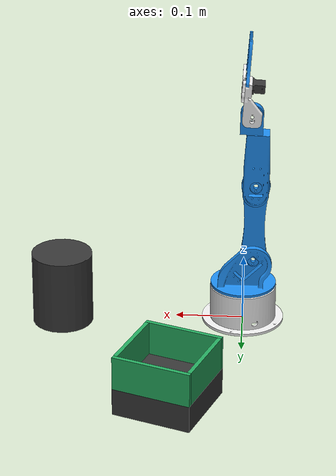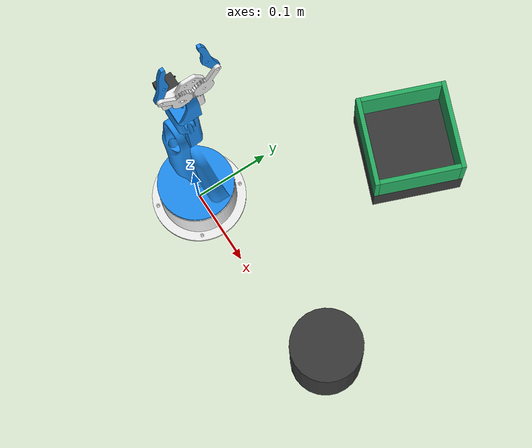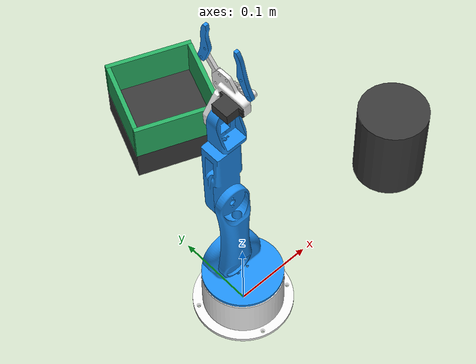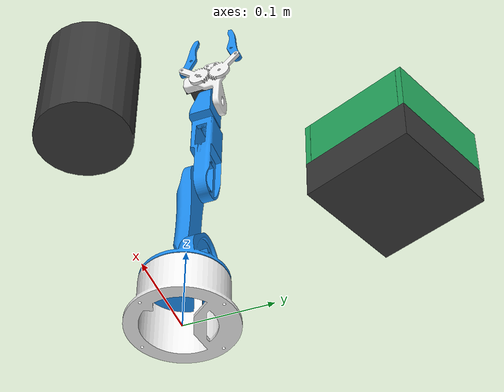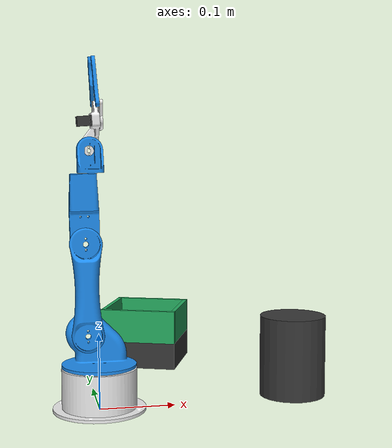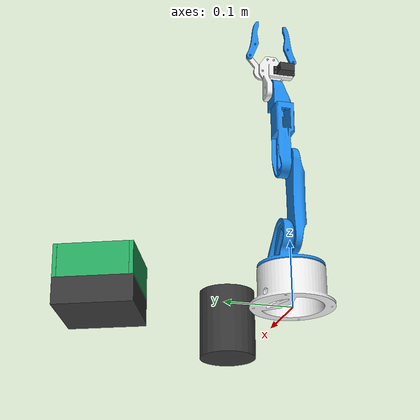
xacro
<?xml version="1.0"?>
<robot xmlns:xacro="http://www.ros.org/wiki/xacro" name="five_dof_arm">

  <xacro:arg name="use_sim" default="true"/>
  <xacro:property name="scale_mm" value="0.001 0.001 0.001"/>

  <material name="blue_pla">
    <color rgba="0.12 0.56 0.95 1.0"/>
  </material>
  <material name="white_pla">
    <color rgba="0.95 0.95 0.95 1.0"/>
  </material>
  <material name="bin_green">
    <color rgba="0.15 0.68 0.38 1.0"/>
  </material>
  <material name="dark_grey">
    <color rgba="0.22 0.22 0.22 1.0"/>
  </material>

  <xacro:macro name="clean_link" params="name stl color:='blue_pla' mass:=0.2">
    <link name="${name}">
      <visual>
        <origin xyz="0 0 0" rpy="0 0 0"/>
        <geometry><mesh filename="package://arm_description/meshes/${stl}" scale="${scale_mm}"/></geometry>
        <material name="${color}"/>
      </visual>
      <collision>
        <origin xyz="0 0 0" rpy="0 0 0"/>
        <geometry><mesh filename="package://arm_description/meshes/${stl}" scale="${scale_mm}"/></geometry>
      </collision>
      <inertial>
        <mass value="${mass}"/>
        <origin xyz="0 0 0" rpy="0 0 0"/>
        <inertia ixx="0.001" ixy="0.0" ixz="0.0" iyy="0.001" iyz="0.0" izz="0.001"/>
      </inertial>
    </link>
  </xacro:macro>

  <link name="world"/>
  <joint name="world_fixed" type="fixed">
    <parent link="world"/>
    <child link="base_link"/>
    <origin xyz="0 0 0" rpy="0 0 0"/>
  </joint>

  <xacro:clean_link name="base_link"   stl="base_clean.stl"   color="white_pla" mass="1.0"/>
  <xacro:clean_link name="waist_link"  stl="waist_clean.stl"  color="blue_pla" mass="0.4"/>
  <xacro:clean_link name="arm_01_link" stl="arm_01_clean.stl" color="blue_pla" mass="0.3"/>
  <xacro:clean_link name="arm_02_link" stl="arm_02_clean.stl" color="blue_pla" mass="0.25"/>
  <xacro:clean_link name="arm_03_link" stl="arm_03_clean.stl" color="blue_pla" mass="0.15"/>

  <link name="gripper_base_link">
    <visual>
      <origin xyz="0 0 0" rpy="0 0 0"/>
      <geometry><mesh filename="package://arm_description/meshes/gripper_base_clean.stl" scale="${scale_mm}"/></geometry>
      <material name="white_pla"/>
    </visual>
    <visual>
      <origin xyz="0 0 0" rpy="0 0 0"/>
      <geometry><mesh filename="package://arm_description/meshes/servo_clean.stl" scale="${scale_mm}"/></geometry>
      <material name="dark_grey"/>
    </visual>
    <collision>
      <origin xyz="0 0 0" rpy="0 0 0"/>
      <geometry><mesh filename="package://arm_description/meshes/gripper_base_clean.stl" scale="${scale_mm}"/></geometry>
    </collision>
    <inertial>
      <mass value="0.15"/>
      <origin xyz="0 0 0" rpy="0 0 0"/>
      <inertia ixx="0.0005" ixy="0.0" ixz="0.0" iyy="0.0005" iyz="0.0" izz="0.0005"/>
    </inertial>
  </link>

  <link name="left_finger_link">
    <visual>
      <origin xyz="0 0 0" rpy="0 0 0"/>
      <geometry><mesh filename="package://arm_description/meshes/gear_left_clean.stl" scale="${scale_mm}"/></geometry>
      <material name="white_pla"/>
    </visual>
    <visual>
      <origin xyz="0 0 0" rpy="0 0 0"/>
      <geometry><mesh filename="package://arm_description/meshes/finger_left_clean.stl" scale="${scale_mm}"/></geometry>
      <material name="blue_pla"/>
    </visual>
    <collision>
      <origin xyz="0 0 0" rpy="0 0 0"/>
      <geometry><mesh filename="package://arm_description/meshes/finger_left_clean.stl" scale="${scale_mm}"/></geometry>
    </collision>
    <inertial>
      <mass value="0.05"/>
      <origin xyz="0 0 0" rpy="0 0 0"/>
      <inertia ixx="0.002" ixy="0.0" ixz="0.0" iyy="0.002" iyz="0.0" izz="0.002"/>
    </inertial>
  </link>

  <link name="right_finger_link">
    <visual>
      <origin xyz="0 0 0" rpy="0 0 0"/>
      <geometry><mesh filename="package://arm_description/meshes/gear_right_clean.stl" scale="${scale_mm}"/></geometry>
      <material name="white_pla"/>
    </visual>
    <visual>
      <origin xyz="0 0 0" rpy="0 0 0"/>
      <geometry><mesh filename="package://arm_description/meshes/finger_right_clean.stl" scale="${scale_mm}"/></geometry>
      <material name="blue_pla"/>
    </visual>
    <collision>
      <origin xyz="0 0 0" rpy="0 0 0"/>
      <geometry><mesh filename="package://arm_description/meshes/finger_right_clean.stl" scale="${scale_mm}"/></geometry>
    </collision>
    <inertial>
      <mass value="0.05"/>
      <origin xyz="0 0 0" rpy="0 0 0"/>
      <inertia ixx="0.002" ixy="0.0" ixz="0.0" iyy="0.002" iyz="0.0" izz="0.002"/>
    </inertial>
  </link>

  <joint name="joint_1" type="revolute">
    <parent link="base_link"/>
    <child link="waist_link"/>
    <origin xyz="0.00000 0.00000 0.05750" rpy="0 0 0"/>
    <axis xyz="0 0 1"/>
    <dynamics damping="0.8" friction="0.2"/>
    <limit lower="-3.1415" upper="3.1415" effort="15.0" velocity="2.0"/>
  </joint>

  <joint name="joint_2" type="revolute">
    <parent link="waist_link"/>
    <child link="arm_01_link"/>
    <origin xyz="-0.02220 0.00428 0.03866" rpy="0 0 0"/>
    <axis xyz="0 1 0"/>
    <dynamics damping="0.8" friction="0.2"/>
    <limit lower="-1.5708" upper="1.5708" effort="15.0" velocity="2.0"/>
  </joint>

  <joint name="joint_3" type="revolute">
    <parent link="arm_01_link"/>
    <child link="arm_02_link"/>
    <origin xyz="0.00681 0.00000 0.11423" rpy="0 0 0"/>
    <axis xyz="0 1 0"/>
    <dynamics damping="0.8" friction="0.2"/>
    <limit lower="-2.0" upper="2.0" effort="12.0" velocity="2.0"/>
  </joint>

  <joint name="joint_4" type="revolute">
    <parent link="arm_02_link"/>
    <child link="arm_03_link"/>
    <origin xyz="0.00313 0.00659 0.09735" rpy="0 0 0"/>
    <axis xyz="0.0321 0.0000 0.9995"/>
    <dynamics damping="0.8" friction="0.2"/>
    <limit lower="-3.1415" upper="3.1415" effort="10.0" velocity="2.5"/>
  </joint>

  <joint name="joint_5" type="revolute">
    <parent link="arm_03_link"/>
    <child link="gripper_base_link"/>
    <origin xyz="0.00607 0.01120 0.03247" rpy="0 0 0"/>
    <axis xyz="0 1 0"/>
    <dynamics damping="0.8" friction="0.2"/>
    <limit lower="-1.5708" upper="1.5708" effort="5.0" velocity="3.0"/>
  </joint>

  <joint name="gripper_left_joint" type="revolute">
    <parent link="gripper_base_link"/>
    <child link="left_finger_link"/>
    <origin xyz="0.00832 -0.01387 0.03679" rpy="0 0 0"/>
    <axis xyz="0.99760 -0.00075 0.06918"/>
    <dynamics damping="0.4" friction="0.1"/>
    <limit lower="-0.280" upper="0.6" effort="10.0" velocity="0.8"/>
  </joint>

  <joint name="gripper_right_joint" type="revolute">
    <parent link="gripper_base_link"/>
    <child link="right_finger_link"/>
    <origin xyz="0.01025 0.00825 0.03386" rpy="0 0 0"/>
    <axis xyz="-0.99760 0.00075 -0.06918"/>
    <dynamics damping="0.4" friction="0.1"/>
    <limit lower="-0.280" upper="0.6" effort="10.0" velocity="0.8"/>
  </joint>

  <!-- High-friction finger pads for grasping objects in Gazebo -->
  <gazebo reference="left_finger_link">
    <mu1>50.0</mu1>
    <mu2>50.0</mu2>
    <kp>100000.0</kp>
    <kd>10.0</kd>
  </gazebo>
  <gazebo reference="right_finger_link">
    <mu1>50.0</mu1>
    <mu2>50.0</mu2>
    <kp>100000.0</kp>
    <kd>10.0</kd>
  </gazebo>

  <!-- ros2_control hardware interface -->
  <ros2_control name="GazeboSystem" type="system">
    <hardware>
      <xacro:if value="$(arg use_sim)">
        <plugin>gz_ros2_control/GazeboSimSystem</plugin>
      </xacro:if>
      <xacro:unless value="$(arg use_sim)">
        <plugin>mock_components/GenericSystem</plugin>
      </xacro:unless>
    </hardware>

    <joint name="joint_1">
      <command_interface name="position"/>
      <state_interface name="position"><param name="initial_value">0.0</param></state_interface>
      <state_interface name="velocity"/>
    </joint>
    <joint name="joint_2">
      <command_interface name="position"/>
      <state_interface name="position"><param name="initial_value">0.0</param></state_interface>
      <state_interface name="velocity"/>
    </joint>
    <joint name="joint_3">
      <command_interface name="position"/>
      <state_interface name="position"><param name="initial_value">0.0</param></state_interface>
      <state_interface name="velocity"/>
    </joint>
    <joint name="joint_4">
      <command_interface name="position"/>
      <state_interface name="position"><param name="initial_value">0.0</param></state_interface>
      <state_interface name="velocity"/>
    </joint>
    <joint name="joint_5">
      <command_interface name="position"/>
      <state_interface name="position"><param name="initial_value">0.0</param></state_interface>
      <state_interface name="velocity"/>
    </joint>
    <joint name="gripper_left_joint">
      <command_interface name="position"/>
      <state_interface name="position"><param name="initial_value">0.0</param></state_interface>
      <state_interface name="velocity"/>
    </joint>
    <joint name="gripper_right_joint">
      <command_interface name="position"/>
      <state_interface name="position"><param name="initial_value">0.0</param></state_interface>
      <state_interface name="velocity"/>
    </joint>
  </ros2_control>

  <gazebo>
    <plugin filename="gz_ros2_control-system" name="gz_ros2_control::GazeboSimROS2ControlPlugin">
      <position_proportional_gain>1.8</position_proportional_gain>
      <parameters>$(find arm_moveit_config)/config/ros2_controllers.yaml</parameters>
    </plugin>
  </gazebo>

  <!-- Pedestal Table for Target Cube -->
  <link name="cube_pedestal_link">
    <visual>
      <origin xyz="0.2691 0.0193 0.0554" rpy="0 0 0"/>
      <geometry><cylinder radius="0.045" length="0.1109"/></geometry>
      <material name="dark_grey"/>
    </visual>
    <collision>
      <origin xyz="0.2691 0.0193 0.0554" rpy="0 0 0"/>
      <geometry><cylinder radius="0.045" length="0.1109"/></geometry>
    </collision>
    <inertial>
      <mass value="1.0"/>
      <origin xyz="0.2691 0.0193 0.0554" rpy="0 0 0"/>
      <inertia ixx="0.001" ixy="0" ixz="0" iyy="0.001" iyz="0" izz="0.001"/>
    </inertial>
  </link>
  <joint name="pedestal_fixed" type="fixed">
    <parent link="world"/>
    <child link="cube_pedestal_link"/>
    <origin xyz="0 0 0" rpy="0 0 0"/>
  </joint>

  <!-- Open-Top Drop-Off Box at joint_1 = 1.2 rad -->
  <link name="drop_box_link">
    <!-- Box Base/Floor -->
    <visual>
      <origin xyz="0.0997 0.2565 0.0200" rpy="0 0 1.2000"/>
      <geometry><box size="0.1160 0.1160 0.0400"/></geometry>
      <material name="dark_grey"/>
    </visual>
    <collision>
      <origin xyz="0.0997 0.2565 0.0200" rpy="0 0 1.2000"/>
      <geometry><box size="0.1160 0.1160 0.0400"/></geometry>
    </collision>

    <!-- +X Wall -->
    <visual>
      <origin xyz="0.1196 0.3078 0.0650" rpy="0 0 1.2000"/>
      <geometry><box size="0.0060 0.1160 0.0500"/></geometry>
      <material name="bin_green"/>
    </visual>
    <collision>
      <origin xyz="0.1196 0.3078 0.0650" rpy="0 0 1.2000"/>
      <geometry><box size="0.0060 0.1160 0.0500"/></geometry>
    </collision>

    <!-- -X Wall -->
    <visual>
      <origin xyz="0.0798 0.2052 0.0650" rpy="0 0 1.2000"/>
      <geometry><box size="0.0060 0.1160 0.0500"/></geometry>
      <material name="bin_green"/>
    </visual>
    <collision>
      <origin xyz="0.0798 0.2052 0.0650" rpy="0 0 1.2000"/>
      <geometry><box size="0.0060 0.1160 0.0500"/></geometry>
    </collision>

    <!-- +Y Wall -->
    <visual>
      <origin xyz="0.0484 0.2764 0.0650" rpy="0 0 1.2000"/>
      <geometry><box size="0.1040 0.0060 0.0500"/></geometry>
      <material name="bin_green"/>
    </visual>
    <collision>
      <origin xyz="0.0484 0.2764 0.0650" rpy="0 0 1.2000"/>
      <geometry><box size="0.1040 0.0060 0.0500"/></geometry>
    </collision>

    <!-- -Y Wall -->
    <visual>
      <origin xyz="0.1510 0.2366 0.0650" rpy="0 0 1.2000"/>
      <geometry><box size="0.1040 0.0060 0.0500"/></geometry>
      <material name="bin_green"/>
    </visual>
    <collision>
      <origin xyz="0.1510 0.2366 0.0650" rpy="0 0 1.2000"/>
      <geometry><box size="0.1040 0.0060 0.0500"/></geometry>
    </collision>

    <inertial>
      <mass value="2.0"/>
      <origin xyz="0.0997 0.2565 0.0200" rpy="0 0 0"/>
      <inertia ixx="0.01" ixy="0" ixz="0" iyy="0.01" iyz="0" izz="0.01"/>
    </inertial>
  </link>

  <joint name="drop_box_fixed" type="fixed">
    <parent link="world"/>
    <child link="drop_box_link"/>
    <origin xyz="0 0 0" rpy="0 0 0"/>
  </joint>
  <gazebo reference="drop_box_link">
    <material>Gazebo/Green</material>
    <mu1>10.0</mu1>
    <mu2>10.0</mu2>
  </gazebo>
</robot>
